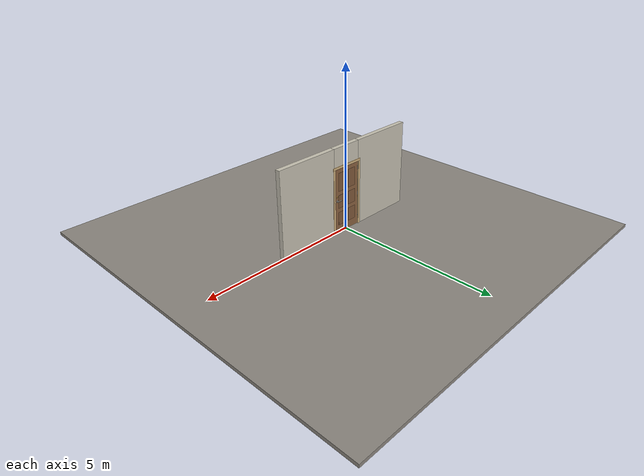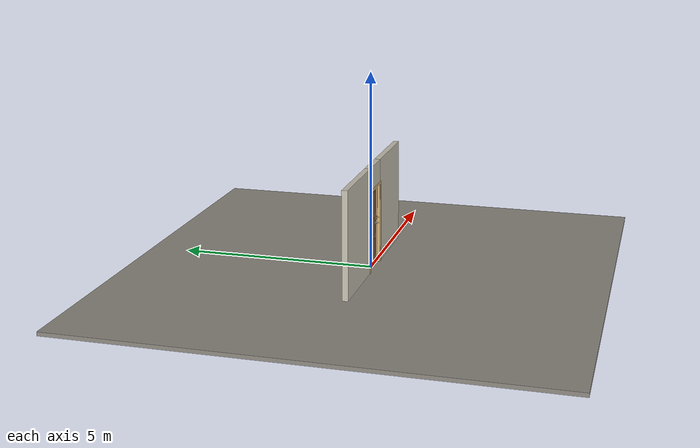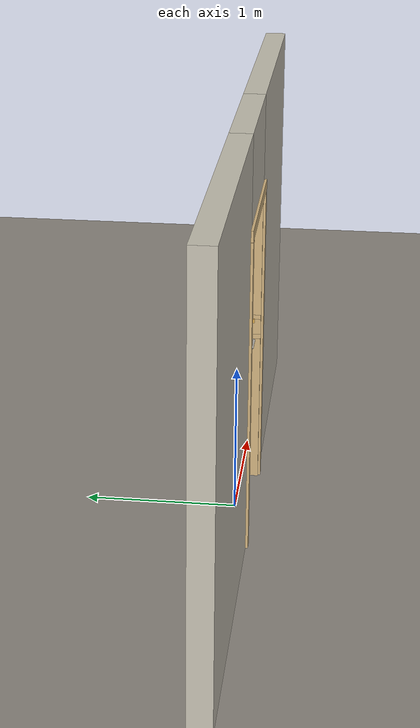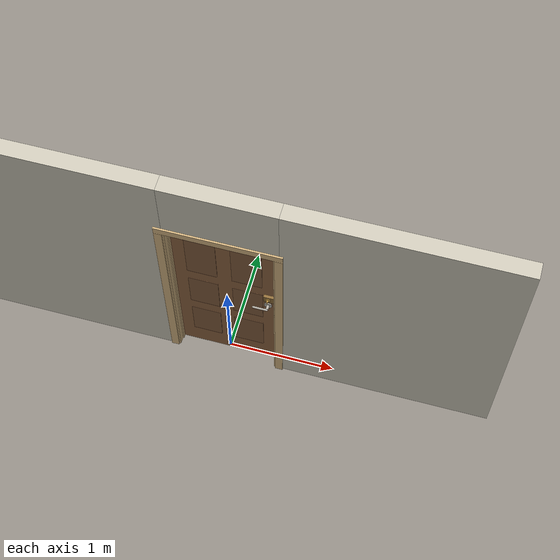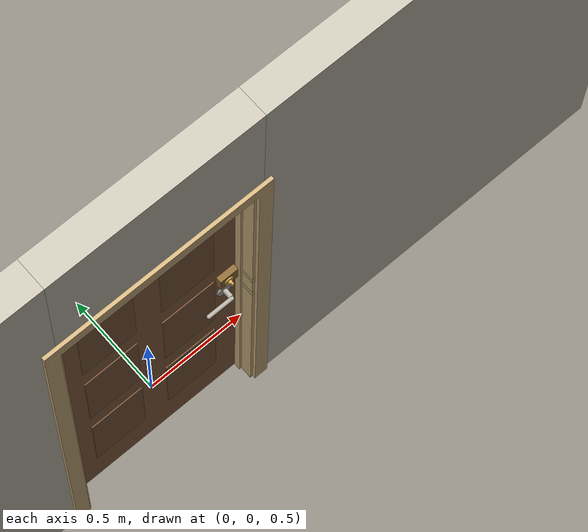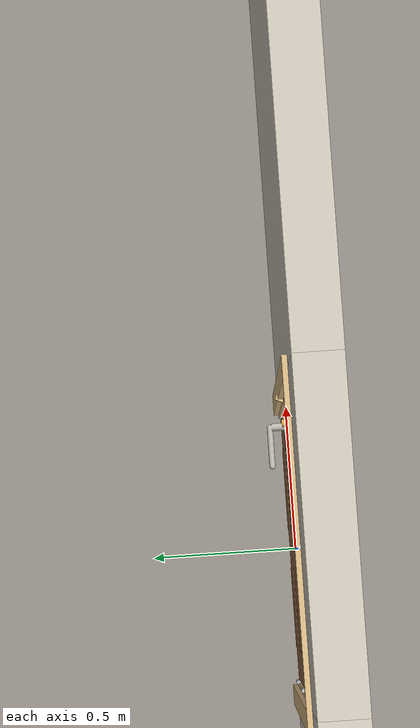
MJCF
<?xml version="1.0" ?>
<mujoco model="db0664_swing_single_full">
  <compiler angle="radian" meshdir="../../hardware" texturedir="../../textures" autolimits="true" inertiafromgeom="false"/>
  <option timestep="0.002" integrator="implicitfast" cone="elliptic" impratio="10" noslip_iterations="3">
    <flag multiccd="enable"/>
  </option>
  <size memory="16M"/>
  <default>
    <geom condim="4" solref="0.005 1" solimp="0.95 0.99 0.001"/>
    <joint solreflimit="0.005 1" solimplimit="0.95 0.99 0.001"/>
    <tendon solreflimit="0.005 1"/>
    <equality solref="0.002 1"/>
  </default>
  <visual>
    <headlight ambient="0.4 0.4 0.4" diffuse="0.7 0.7 0.7" specular="0.2 0.2 0.2"/>
    <quality shadowsize="4096"/>
    <map znear="0.01" zfar="60"/>
  </visual>
  <asset>
    <mesh name="cyl_face_e9e5036966" file="cyl_face_e9e5036966.obj"/>
    <mesh name="hinge_e22b26c0c1" file="hinge_e22b26c0c1.obj"/>
    <mesh name="hinge_jamb_e1d088f8dc" file="hinge_jamb_e1d088f8dc.obj"/>
    <mesh name="lever_9f02b544cf" file="lever_9f02b544cf.obj"/>
    <mesh name="thumbturn_eb5c9899a3" file="thumbturn_eb5c9899a3.obj"/>
    <material name="mat_floor" rgba="0.55 0.53 0.5 1" specular="0.2" shininess="0.15" reflectance="0"/>
    <material name="mat_wall" rgba="0.78 0.76 0.7 1" specular="0.2" shininess="0.1" reflectance="0"/>
    <material name="mat_leaf" rgba="0.542 0.378 0.247 1" specular="0.2" shininess="0.45" reflectance="0"/>
    <material name="mat_leaf_panel" rgba="0.499 0.348 0.227 1" specular="0.2" shininess="0.45" reflectance="0"/>
    <material name="mat_hinge" rgba="0.65 0.66 0.68 1" specular="0.74" shininess="0.5" reflectance="0.36"/>
    <material name="mat_op_nickel_satin" rgba="0.72 0.7 0.66 1" specular="0.8" shininess="0.65" reflectance="0.4"/>
    <material name="mat_trim" rgba="0.85 0.66 0.3 1" specular="0.8" shininess="0.75" reflectance="0.4"/>
    <material name="mat_bolt" rgba="0.85 0.66 0.3 1" specular="0.8" shininess="0.75" reflectance="0.4"/>
    <material name="mat_night_latch" rgba="0.55 0.42 0.22 1" specular="0.74" shininess="0.45" reflectance="0.36"/>
    <material name="mat_deadbolt" rgba="0.85 0.66 0.3 1" specular="0.8" shininess="0.75" reflectance="0.4"/>
    <material name="mat_frame" rgba="0.82 0.7 0.5 1" specular="0.2" shininess="0.45" reflectance="0"/>
    <material name="mat_transom" rgba="0.85 0.92 0.95 0.25" specular="0.2" shininess="0.95" reflectance="0.1"/>
    <texture name="skybox" type="skybox" builtin="gradient" rgb1="0.6 0.7 0.85" rgb2="0.9 0.92 0.95" width="256" height="256"/>
  </asset>
  <worldbody>
    <light name="sun" pos="1.5 -2.5 4" dir="-0.3 0.5 -0.8" directional="true" diffuse="0.8 0.8 0.8" specular="0.3 0.3 0.3" castshadow="true"/>
    <light name="fill" pos="-1.5 2.5 3" dir="0.3 -0.5 -0.7" directional="true" diffuse="0.35 0.35 0.4" castshadow="false"/>
    <camera name="robot_view" pos="0 -2.585687 1.734312" xyaxes="1 0 0 0 0.26963 0.962964" fovy="52"/>
    <camera name="far_view" pos="0 2.498687 1.734312" xyaxes="-1 0 0 0 -0.26963 0.962964" fovy="52"/>
    <camera name="iso" pos="1.932062 -2.178937 2.141063" xyaxes="0.741536 0.670913 0 -0.242917 0.268487 0.932151" fovy="46"/>
    <camera name="detail_handle" pos="0.4665 -0.877 1.33" xyaxes="0.97561 0.219512 0 -0.070934 0.315262 0.94635" fovy="38"/>
    <geom name="floor" type="box" size="6 6 0.05" pos="0 0 -0.05" material="mat_floor" group="0" contype="1" conaffinity="1" friction="0.8 0.005 0.0001" density="2400"/>
    <geom name="wall_left" type="box" size="1.01025 0.0725 1.35" pos="-1.48975 -0.0435 1.35" material="mat_wall" group="0" contype="1" conaffinity="1" friction="0.6 0.005 0.0001" density="800"/>
    <geom name="wall_right" type="box" size="0.99525 0.0725 1.35" pos="1.50475 -0.0435 1.35" material="mat_wall" group="0" contype="1" conaffinity="1" friction="0.6 0.005 0.0001" density="800"/>
    <geom name="wall_header" type="box" size="0.4945 0.0725 0.303" pos="0.015 -0.0435 2.397" material="mat_wall" group="0" contype="1" conaffinity="1" friction="0.6 0.005 0.0001" density="800"/>
    <geom name="hinge_0_jamb" type="mesh" mesh="hinge_jamb_e1d088f8dc" pos="-0.4575 0.029 0.259" quat="0 1 0 0" material="mat_hinge" group="1" contype="0" conaffinity="0" density="7850"/>
    <geom name="hinge_1_jamb" type="mesh" mesh="hinge_jamb_e1d088f8dc" pos="-0.4575 0.029 1.025" quat="0 1 0 0" material="mat_hinge" group="1" contype="0" conaffinity="0" density="7850"/>
    <geom name="hinge_2_jamb" type="mesh" mesh="hinge_jamb_e1d088f8dc" pos="-0.4575 0.029 1.861" quat="0 1 0 0" material="mat_hinge" group="1" contype="0" conaffinity="0" density="7850"/>
    <geom name="leaf_deadbolt_strike_b" type="box" size="0.0155 0.003 0.0005" pos="0.46 0 1.1715" quat="-0.5 -0.5 0.5 0.5" material="mat_deadbolt" group="1" contype="0" conaffinity="0" density="7800"/>
    <geom name="leaf_deadbolt_strike_l" type="box" size="0.003 0.0155 0.0005" pos="0.46 0.0125 1.19" quat="-0.5 -0.5 0.5 0.5" material="mat_deadbolt" group="1" contype="0" conaffinity="0" density="7800"/>
    <geom name="leaf_deadbolt_strike_t" type="box" size="0.0155 0.003 0.0005" pos="0.46 0 1.2085" quat="-0.5 -0.5 0.5 0.5" material="mat_deadbolt" group="1" contype="0" conaffinity="0" density="7800"/>
    <geom name="leaf_deadbolt_strike_r" type="box" size="0.003 0.0155 0.0005" pos="0.46 -0.0125 1.19" quat="-0.5 -0.5 0.5 0.5" material="mat_deadbolt" group="1" contype="0" conaffinity="0" density="7800"/>
    <geom name="jamb_hinge" type="box" size="0.0095 0.0725 1.0225" pos="-0.47 -0.0435 1.0225" material="mat_frame" group="0" contype="1" conaffinity="1" friction="0.6 0.005 0.0001" density="400"/>
    <geom name="strike_1050_wall_n" type="box" size="0.0245 0.054075 0.0167" pos="0.485 -0.061925 1.05" material="mat_frame" group="0" contype="1" conaffinity="1" friction="0.6 0.005 0.0001" density="400"/>
    <geom name="strike_1050_wall_p" type="box" size="0.0245 0.008 0.0167" pos="0.485 0.01585 1.05" material="mat_frame" group="0" contype="1" conaffinity="1" friction="0.6 0.005 0.0001" density="400"/>
    <geom name="strike_1050_ramp" type="box" size="0.0245 0.01649 0.0167" pos="0.489636 0.028673 1.05" quat="0.977148 0 0 -0.212558" material="mat_frame" group="0" contype="1" conaffinity="1" friction="0.12 0.005 0.0001" density="400"/>
    <geom name="strike_1050_back" type="box" size="0.01615 0.00785 0.0167" pos="0.49335 0 1.05" material="mat_frame" group="0" contype="1" conaffinity="1" friction="0.6 0.005 0.0001" density="400"/>
    <geom name="strike_1190_wall_n" type="box" size="0.0245 0.05325 0.0155" pos="0.485 -0.06275 1.19" material="mat_frame" group="0" contype="1" conaffinity="1" friction="0.6 0.005 0.0001" density="400"/>
    <geom name="strike_1190_wall_p" type="box" size="0.0245 0.00975 0.0155" pos="0.485 0.01925 1.19" material="mat_frame" group="0" contype="1" conaffinity="1" friction="0.6 0.005 0.0001" density="400"/>
    <geom name="strike_1190_back" type="box" size="0.0145 0.0095 0.0155" pos="0.495 0 1.19" material="mat_frame" group="0" contype="1" conaffinity="1" friction="0.6 0.005 0.0001" density="400"/>
    <geom name="jamb_strike_0" type="box" size="0.0245 0.0725 0.51665" pos="0.485 -0.0435 0.51665" material="mat_frame" group="0" contype="1" conaffinity="1" friction="0.6 0.005 0.0001" density="400"/>
    <geom name="jamb_strike_1" type="box" size="0.0245 0.0725 0.0539" pos="0.485 -0.0435 1.1206" material="mat_frame" group="0" contype="1" conaffinity="1" friction="0.6 0.005 0.0001" density="400"/>
    <geom name="jamb_strike_2" type="box" size="0.0245 0.0725 0.41975" pos="0.485 -0.0435 1.62525" material="mat_frame" group="0" contype="1" conaffinity="1" friction="0.6 0.005 0.0001" density="400"/>
    <geom name="jamb_head" type="box" size="0.4945 0.0725 0.0095" pos="0.015 -0.0435 2.0545" material="mat_frame" group="0" contype="1" conaffinity="1" friction="0.6 0.005 0.0001" density="400"/>
    <geom name="head_stud" type="box" size="0.4945 0.0725 0.015" pos="0.015 -0.0435 2.079" material="mat_wall" group="0" contype="1" conaffinity="1" friction="0.6 0.005 0.0001" density="500"/>
    <geom name="stop_hinge" type="box" size="0.0055 0.016 1.0225" pos="-0.455 -0.0385 1.0225" material="mat_frame" group="0" contype="1" conaffinity="1" friction="0.6 0.005 0.0001" density="400"/>
    <geom name="stop_strike" type="box" size="0.0055 0.016 1.0225" pos="0.455 -0.0385 1.0225" material="mat_frame" group="0" contype="1" conaffinity="1" friction="0.6 0.005 0.0001" density="400"/>
    <geom name="stop_head" type="box" size="0.4605 0.016 0.0055" pos="0 -0.0385 2.0395" material="mat_frame" group="0" contype="1" conaffinity="1" friction="0.6 0.005 0.0001" density="400"/>
    <geom name="casing_l_n" type="box" size="0.035 0.008 1.032" pos="-0.5095 -0.124 1.0225" material="mat_frame" group="2" contype="0" conaffinity="0" density="400"/>
    <geom name="casing_r_n" type="box" size="0.035 0.008 1.032" pos="0.5095 -0.124 1.0225" material="mat_frame" group="2" contype="0" conaffinity="0" density="400"/>
    <geom name="casing_h_n" type="box" size="0.5445 0.008 0.035" pos="0 -0.124 2.094" material="mat_frame" group="2" contype="0" conaffinity="0" density="400"/>
    <geom name="casing_l_p" type="box" size="0.035 0.008 1.032" pos="-0.5095 0.037 1.0225" material="mat_frame" group="2" contype="0" conaffinity="0" density="400"/>
    <geom name="casing_r_p" type="box" size="0.035 0.008 1.032" pos="0.5095 0.037 1.0225" material="mat_frame" group="2" contype="0" conaffinity="0" density="400"/>
    <geom name="casing_h_p" type="box" size="0.5445 0.008 0.035" pos="0 0.037 2.094" material="mat_frame" group="2" contype="0" conaffinity="0" density="400"/>
    <geom name="transom_glass" type="box" size="0.4605 0.003 0.18" pos="0 0 2.295" material="mat_transom" group="0" contype="1" conaffinity="1" friction="0.6 0.005 0.0001" density="2500"/>
    <site name="approach_point" pos="0 -1.5 0" quat="1 0 0 0" size="0.05" rgba="0.2 0.9 0.2 0.5" group="4"/>
    <site name="goal_point" pos="0 1.5 0" quat="1 0 0 0" size="0.05" rgba="0.2 0.9 0.2 0.5" group="4"/>
    <site name="door_plane_center" pos="0 0 1.0225" quat="1 0 0 0" size="0.02" rgba="0.2 0.9 0.2 0.5" group="4"/>
    <body name="leaf" pos="-0.4605 0 0">
      <inertial pos="0.458564 -0.000082 1.027945" mass="43.216693" quat="-0.49983 0.501728 0.498188 0.500247" diaginertia="3.178349968 14.724822118 17.887302896"/>
      <joint name="leaf_hinge" type="hinge" axis="0 0 1" pos="0.003 0.029 0" limited="true" range="0 2.356194" damping="0.30611" frictionloss="0.188358" armature="0.02"/>
      <geom name="leaf_slab" type="box" size="0.457 0.022 1.016" pos="0.46 0 1.025" material="mat_leaf" group="0" contype="1" conaffinity="1" friction="0.35 0.005 0.0001" density="1"/>
      <geom name="leaf_panel_0_n" type="box" size="0.13573 0.003 0.209032" pos="0.25927 -0.025 0.461552" material="mat_leaf_panel" group="1" contype="0" conaffinity="0" density="1"/>
      <geom name="leaf_panel_0_p" type="box" size="0.13573 0.003 0.209032" pos="0.25927 0.025 0.461552" material="mat_leaf_panel" group="1" contype="0" conaffinity="0" density="1"/>
      <geom name="leaf_panel_1_n" type="box" size="0.13573 0.003 0.209032" pos="0.66073 -0.025 0.461552" material="mat_leaf_panel" group="1" contype="0" conaffinity="0" density="1"/>
      <geom name="leaf_panel_1_p" type="box" size="0.13573 0.003 0.209032" pos="0.66073 0.025 0.461552" material="mat_leaf_panel" group="1" contype="0" conaffinity="0" density="1"/>
      <geom name="leaf_panel_2_n" type="box" size="0.13573 0.003 0.209032" pos="0.25927 -0.025 1.009616" material="mat_leaf_panel" group="1" contype="0" conaffinity="0" density="1"/>
      <geom name="leaf_panel_2_p" type="box" size="0.13573 0.003 0.209032" pos="0.25927 0.025 1.009616" material="mat_leaf_panel" group="1" contype="0" conaffinity="0" density="1"/>
      <geom name="leaf_panel_3_n" type="box" size="0.13573 0.003 0.209032" pos="0.66073 -0.025 1.009616" material="mat_leaf_panel" group="1" contype="0" conaffinity="0" density="1"/>
      <geom name="leaf_panel_3_p" type="box" size="0.13573 0.003 0.209032" pos="0.66073 0.025 1.009616" material="mat_leaf_panel" group="1" contype="0" conaffinity="0" density="1"/>
      <geom name="leaf_panel_4_n" type="box" size="0.13573 0.003 0.285376" pos="0.25927 -0.025 1.634024" material="mat_leaf_panel" group="1" contype="0" conaffinity="0" density="1"/>
      <geom name="leaf_panel_4_p" type="box" size="0.13573 0.003 0.285376" pos="0.25927 0.025 1.634024" material="mat_leaf_panel" group="1" contype="0" conaffinity="0" density="1"/>
      <geom name="leaf_panel_5_n" type="box" size="0.13573 0.003 0.285376" pos="0.66073 -0.025 1.634024" material="mat_leaf_panel" group="1" contype="0" conaffinity="0" density="1"/>
      <geom name="leaf_panel_5_p" type="box" size="0.13573 0.003 0.285376" pos="0.66073 0.025 1.634024" material="mat_leaf_panel" group="1" contype="0" conaffinity="0" density="1"/>
      <geom name="hinge_0" type="mesh" mesh="hinge_e22b26c0c1" pos="0.003 0.029 0.259" quat="0 1 0 0" material="mat_hinge" group="1" contype="0" conaffinity="0" density="7850"/>
      <geom name="hinge_1" type="mesh" mesh="hinge_e22b26c0c1" pos="0.003 0.029 1.025" quat="0 1 0 0" material="mat_hinge" group="1" contype="0" conaffinity="0" density="7850"/>
      <geom name="hinge_2" type="mesh" mesh="hinge_e22b26c0c1" pos="0.003 0.029 1.861" quat="0 1 0 0" material="mat_hinge" group="1" contype="0" conaffinity="0" density="7850"/>
      <geom name="leaf_latch_bolt_faceplate" type="box" size="0.0006 0.01235 0.0267" pos="0.9164 0 1.05" material="mat_bolt" group="1" contype="0" conaffinity="0" density="8500"/>
      <geom name="leaf_night_latch_case" type="box" size="0.046 0.014 0.042" pos="0.857 -0.036 1.19" material="mat_night_latch" group="0" contype="1" conaffinity="1" friction="0.6 0.005 0.0001" density="2500"/>
      <geom name="leaf_deadbolt_faceplate" type="box" size="0.0006 0.014 0.0245" pos="0.9164 0 1.19" material="mat_deadbolt" group="1" contype="0" conaffinity="0" density="8500"/>
      <geom name="leaf_deadbolt_cylinder_face" type="mesh" mesh="cyl_face_e9e5036966" pos="0.852 0.022 1.19" quat="-0.707107 0.707107 0 0" material="mat_deadbolt" group="1" contype="0" conaffinity="0" density="7100"/>
      <site name="leaf_edge_mid" pos="0.917 0 1.016" quat="1 0 0 0" size="0.02" rgba="0.2 0.9 0.2 0.5" group="4"/>
      <body name="leaf_handle" pos="0.847 0 1.05">
        <inertial pos="-0.028544 0 0" mass="0.978187" quat="0 0.707107 0.707107 0" diaginertia="0.001772047 0.003604455 0.005198299"/>
        <joint name="leaf_handle_hinge" type="hinge" axis="0 -1 0" limited="true" range="0 0.96" damping="0.245624" frictionloss="0.048" stiffness="1.2" springref="-0.458333" armature="0.01"/>
        <geom name="leaf_handle_spindle" type="cylinder" size="0.006 0.03" pos="0 0 0" quat="0.707107 -0.707107 0 0" material="mat_op_nickel_satin" group="1" contype="0" conaffinity="0" density="7850"/>
        <geom name="leaf_handle_lever_n" type="mesh" mesh="lever_9f02b544cf" pos="0 -0.022 0" quat="0.707107 0.707107 0 0" material="mat_op_nickel_satin" group="1" contype="0" conaffinity="0" density="3000"/>
        <geom name="leaf_handle_lever_col_n" type="capsule" size="0.0095 0.053" pos="-0.0625 -0.077 0" quat="0.707107 0 -0.707107 0" material="mat_op_nickel_satin" group="3" contype="1" conaffinity="1" rgba="0.8 0.3 0.3 0.25" friction="0.7 0.01 0.0001" density="3000"/>
        <geom name="leaf_handle_hub_col_n" type="cylinder" size="0.012 0.022" pos="0 -0.052 0" quat="0.707107 -0.707107 0 0" material="mat_op_nickel_satin" group="3" contype="1" conaffinity="1" rgba="0.8 0.3 0.3 0.25" friction="0.6 0.005 0.0001" density="3000"/>
        <geom name="leaf_handle_lever_p" type="mesh" mesh="lever_9f02b544cf" pos="0 0.022 0" quat="-0.707107 0.707107 0 0" material="mat_op_nickel_satin" group="1" contype="0" conaffinity="0" density="3000"/>
        <geom name="leaf_handle_lever_col_p" type="capsule" size="0.0095 0.053" pos="-0.0625 0.077 0" quat="0.707107 0 -0.707107 0" material="mat_op_nickel_satin" group="3" contype="1" conaffinity="1" rgba="0.8 0.3 0.3 0.25" friction="0.7 0.01 0.0001" density="3000"/>
        <geom name="leaf_handle_hub_col_p" type="cylinder" size="0.012 0.022" pos="0 0.052 0" quat="0.707107 -0.707107 0 0" material="mat_op_nickel_satin" group="3" contype="1" conaffinity="1" rgba="0.8 0.3 0.3 0.25" friction="0.6 0.005 0.0001" density="3000"/>
        <site name="leaf_handle_grip_n" pos="-0.1 -0.077 0" quat="1 0 0 0" size="0.012" rgba="0.2 0.9 0.2 0.5" group="4"/>
        <site name="leaf_handle_grip_p" pos="-0.1 0.077 0" quat="1 0 0 0" size="0.012" rgba="0.2 0.9 0.2 0.5" group="4"/>
      </body>
      <body name="leaf_latch_bolt" pos="0.917 0 1.05">
        <inertial pos="-0.00865 0 0" mass="0.041419" quat="0.92388 -0.382683 0 0" diaginertia="0.000000798 0.000005598 0.000005598"/>
        <joint name="leaf_latch_bolt_slide" type="slide" axis="-1 0 0" limited="true" range="0 0.0127" damping="2" frictionloss="0.3" stiffness="300" springref="-0.008333" armature="0.1"/>
        <geom name="leaf_latch_bolt_capsule" type="capsule" size="0.00635 0.015" pos="-0.00865 0 0" quat="0.707107 0 0.707107 0" material="mat_bolt" group="0" contype="1" conaffinity="1" friction="0.2 0.005 0.0001" density="8500"/>
      </body>
      <body name="leaf_deadbolt" pos="0.917 0 1.19">
        <inertial pos="-0.007 0 0" mass="0.1564" quat="0 0 0.707107 0.707107" diaginertia="0.000011482 0.000030915 0.000035724"/>
        <joint name="leaf_deadbolt_slide" type="slide" axis="-1 0 0" limited="true" range="0 0.016" damping="5" frictionloss="1.5" armature="0.1"/>
        <geom name="leaf_deadbolt_box" type="box" size="0.023 0.008 0.0125" pos="-0.007 0 0" material="mat_deadbolt" group="0" contype="1" conaffinity="1" friction="0.3 0.005 0.0001" density="8500"/>
      </body>
      <body name="leaf_deadbolt_thumbturn" pos="0.852 -0.05 1.19">
        <inertial pos="0 -0.012928 0" mass="0.178946" quat="0.5 0.5 0.5 0.5" diaginertia="0.000026045 0.000026215 0.000032438"/>
        <joint name="leaf_deadbolt_thumbturn_hinge" type="hinge" axis="0 1 0" limited="true" range="0 1" damping="0.05" frictionloss="0.25" armature="0.005"/>
        <geom name="leaf_deadbolt_thumbturn_mesh" type="mesh" mesh="thumbturn_eb5c9899a3" pos="0 0 0" quat="0.707107 0.707107 0 0" material="mat_deadbolt" group="0" contype="1" conaffinity="1" friction="0.6 0.005 0.0001" density="7100"/>
        <geom name="leaf_deadbolt_thumbturn_col" type="box" size="0.006 0.012 0.016" pos="0 -0.02 0" material="mat_deadbolt" group="3" contype="1" conaffinity="1" rgba="0.8 0.3 0.3 0.25" friction="0.6 0.005 0.0001" density="7100"/>
      </body>
    </body>
  </worldbody>
  <tendon>
    <fixed name="leaf_latch_bolt_coupling" limited="true" range="0 10">
      <joint joint="leaf_latch_bolt_slide" coef="1"/>
      <joint joint="leaf_handle_hinge" coef="-0.013956"/>
    </fixed>
  </tendon>
  <equality>
    <joint name="leaf_deadbolt_couple" joint1="leaf_deadbolt_slide" joint2="leaf_deadbolt_thumbturn_hinge" polycoef="0 0.016 0 0 0" active="true"/>
  </equality>
  <contact>
    <exclude body1="leaf_deadbolt" body2="leaf_deadbolt_thumbturn"/>
  </contact>
  <sensor>
    <jointpos name="leaf_hinge_pos" joint="leaf_hinge"/>
    <jointvel name="leaf_hinge_vel" joint="leaf_hinge"/>
    <jointpos name="leaf_handle_hinge_pos" joint="leaf_handle_hinge"/>
    <jointvel name="leaf_handle_hinge_vel" joint="leaf_handle_hinge"/>
    <jointpos name="leaf_latch_bolt_slide_pos" joint="leaf_latch_bolt_slide"/>
    <jointvel name="leaf_latch_bolt_slide_vel" joint="leaf_latch_bolt_slide"/>
    <jointpos name="leaf_deadbolt_slide_pos" joint="leaf_deadbolt_slide"/>
    <jointvel name="leaf_deadbolt_slide_vel" joint="leaf_deadbolt_slide"/>
    <jointpos name="leaf_deadbolt_thumbturn_hinge_pos" joint="leaf_deadbolt_thumbturn_hinge"/>
    <jointvel name="leaf_deadbolt_thumbturn_hinge_vel" joint="leaf_deadbolt_thumbturn_hinge"/>
  </sensor>
</mujoco>
